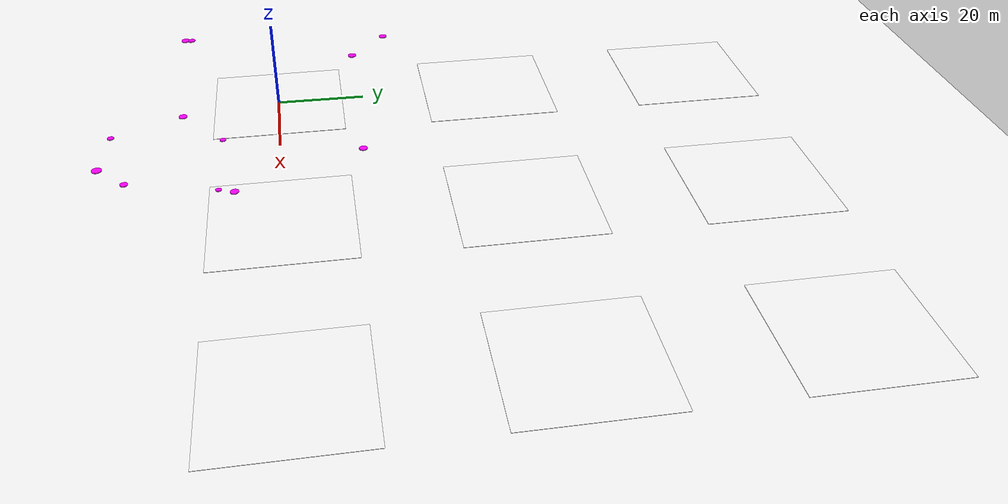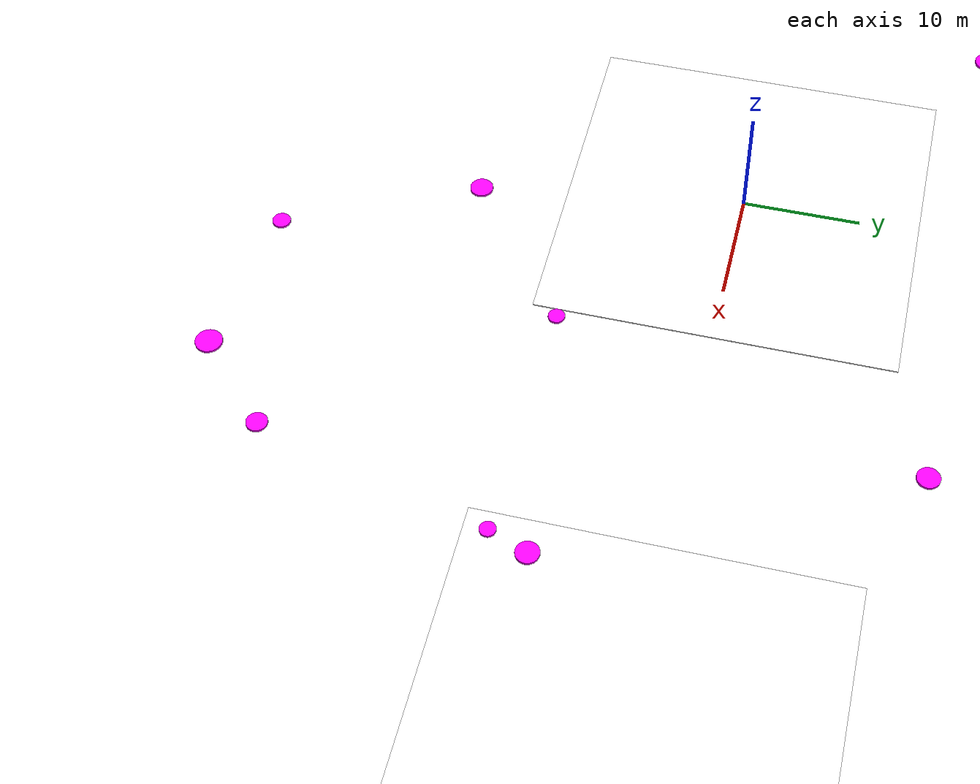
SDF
<sdf version="1.9">
 <world name="multi_field_farm_world">
  <physics name="1ms" type="ignore">
   <max_step_size>0.001</max_step_size>
   <real_time_factor>1.0</real_time_factor>
  </physics>
  <plugin filename="gz-sim-physics-system" name="gz::sim::systems::Physics"/>
  <plugin filename="gz-sim-sensors-system" name="gz::sim::systems::Sensors">
   <render_engine>ogre2</render_engine>
  </plugin>
  <plugin filename="gz-sim-user-commands-system" name="gz::sim::systems::UserCommands"/>
  <plugin filename="gz-sim-scene-broadcaster-system" name="gz::sim::systems::SceneBroadcaster"/>
  <plugin filename="gz-sim-imu-system" name="gz::sim::systems::Imu"/>
  <plugin filename="gz-sim-navsat-system" name="gz::sim::systems::NavSat"/>
  <plugin filename="gz-sim-particle-emitter-system" name="gz::sim::systems::ParticleEmitter"/>
  <scene><ambient>0.85 0.85 0.85</ambient><background>0.7 0.9 1.0</background></scene>
  <spherical_coordinates>
   <latitude_deg>-35.363262</latitude_deg>
   <longitude_deg>149.165237</longitude_deg>
   <elevation>584</elevation>
   <heading_deg>0</heading_deg>
   <surface_model>EARTH_WGS84</surface_model>
  </spherical_coordinates>
  <light type="directional" name="sun">
   <intensity>1.6</intensity>
   <pose>0 0 10 0 0 0</pose>
   <diffuse>1.0 1.0 0.95 1</diffuse>
   <specular>0.8 0.8 0.8 1</specular>
   <attenuation>
    <range>1000</range>
    <constant>0.9</constant>
    <linear>0.01</linear>
    <quadratic>0.001</quadratic>
   </attenuation>
   <direction>-0.3 0.2 -0.9</direction>
  </light>
  <model name="ground_plane">
   <static>true</static>
   <link name="link">
    <collision name="collision">
     <geometry><plane><normal>0 0 1</normal><size>2000 2000</size></plane></geometry>
     <surface><friction><ode><mu>100</mu><mu2>50</mu2></ode></friction></surface>
    </collision>
    <visual name="visual">
     <geometry><plane><normal>0 0 1</normal><size>2000 2000</size></plane></geometry>
     <material>
      <ambient>1 1 1 1</ambient>
      <diffuse>1 1 1 1</diffuse>
      <specular>0.05 0.05 0.05 1</specular>
      <pbr>
       <metal><albedo_map>model://farm_textures/textures/grass.png</albedo_map><roughness>1.0</roughness></metal>
      </pbr>
     </material>
    </visual>
   </link>
  </model>
  <model name="field_1">
   <static>true</static>
   <pose>0 0 0.05 0 0 0</pose>
   <link name="link">
    <collision name="collision"><geometry><box><size>30 30 0.1</size></box></geometry></collision>
    <visual name="visual">
     <geometry><box><size>30 30 0.1</size></box></geometry>
     <material>
      <ambient>1 1 1 1</ambient>
      <diffuse>1 1 1 1</diffuse>
      <specular>0.05 0.05 0.05 1</specular>
      <pbr>
       <metal><albedo_map>model://farm_textures/textures/corn.png</albedo_map><roughness>1.0</roughness></metal>
      </pbr>
     </material>
    </visual>
   </link>
  </model>
  <model name="field_2">
   <static>true</static>
   <pose>50 0 0.05 0 0 0</pose>
   <link name="link">
    <collision name="collision"><geometry><box><size>30 30 0.1</size></box></geometry></collision>
    <visual name="visual">
     <geometry><box><size>30 30 0.1</size></box></geometry>
     <material>
      <ambient>1 1 1 1</ambient>
      <diffuse>1 1 1 1</diffuse>
      <specular>0.05 0.05 0.05 1</specular>
      <pbr>
       <metal><albedo_map>model://farm_textures/textures/soybean.png</albedo_map><roughness>1.0</roughness></metal>
      </pbr>
     </material>
    </visual>
   </link>
  </model>
  <model name="field_3">
   <static>true</static>
   <pose>100 0 0.05 0 0 0</pose>
   <link name="link">
    <collision name="collision"><geometry><box><size>30 30 0.1</size></box></geometry></collision>
    <visual name="visual">
     <geometry><box><size>30 30 0.1</size></box></geometry>
     <material>
      <ambient>1 1 1 1</ambient>
      <diffuse>1 1 1 1</diffuse>
      <specular>0.05 0.05 0.05 1</specular>
      <pbr>
       <metal><albedo_map>model://farm_textures/textures/wheat.png</albedo_map><roughness>1.0</roughness></metal>
      </pbr>
     </material>
    </visual>
   </link>
  </model>
  <model name="field_4">
   <static>true</static>
   <pose>0 50 0.05 0 0 0</pose>
   <link name="link">
    <collision name="collision"><geometry><box><size>30 30 0.1</size></box></geometry></collision>
    <visual name="visual">
     <geometry><box><size>30 30 0.1</size></box></geometry>
     <material>
      <ambient>1 1 1 1</ambient>
      <diffuse>1 1 1 1</diffuse>
      <specular>0.05 0.05 0.05 1</specular>
      <pbr>
       <metal><albedo_map>model://farm_textures/textures/rice.png</albedo_map><roughness>1.0</roughness></metal>
      </pbr>
     </material>
    </visual>
   </link>
  </model>
  <model name="field_5">
   <static>true</static>
   <pose>50 50 0.05 0 0 0</pose>
   <link name="link">
    <collision name="collision"><geometry><box><size>30 30 0.1</size></box></geometry></collision>
    <visual name="visual">
     <geometry><box><size>30 30 0.1</size></box></geometry>
     <material>
      <ambient>1 1 1 1</ambient>
      <diffuse>1 1 1 1</diffuse>
      <specular>0.05 0.05 0.05 1</specular>
      <pbr>
       <metal><albedo_map>model://farm_textures/textures/canola.png</albedo_map><roughness>1.0</roughness></metal>
      </pbr>
     </material>
    </visual>
   </link>
  </model>
  <model name="field_6">
   <static>true</static>
   <pose>100 50 0.05 0 0 0</pose>
   <link name="link">
    <collision name="collision"><geometry><box><size>30 30 0.1</size></box></geometry></collision>
    <visual name="visual">
     <geometry><box><size>30 30 0.1</size></box></geometry>
     <material>
      <ambient>1 1 1 1</ambient>
      <diffuse>1 1 1 1</diffuse>
      <specular>0.05 0.05 0.05 1</specular>
      <pbr>
       <metal><albedo_map>model://farm_textures/textures/barley.png</albedo_map><roughness>1.0</roughness></metal>
      </pbr>
     </material>
    </visual>
   </link>
  </model>
  <model name="field_7">
   <static>true</static>
   <pose>0 100 0.05 0 0 0</pose>
   <link name="link">
    <collision name="collision"><geometry><box><size>30 30 0.1</size></box></geometry></collision>
    <visual name="visual">
     <geometry><box><size>30 30 0.1</size></box></geometry>
     <material>
      <ambient>1 1 1 1</ambient>
      <diffuse>1 1 1 1</diffuse>
      <specular>0.05 0.05 0.05 1</specular>
      <pbr>
       <metal><albedo_map>model://farm_textures/textures/cotton.png</albedo_map><roughness>1.0</roughness></metal>
      </pbr>
     </material>
    </visual>
   </link>
  </model>
  <model name="field_8">
   <static>true</static>
   <pose>50 100 0.05 0 0 0</pose>
   <link name="link">
    <collision name="collision"><geometry><box><size>30 30 0.1</size></box></geometry></collision>
    <visual name="visual">
     <geometry><box><size>30 30 0.1</size></box></geometry>
     <material>
      <ambient>1 1 1 1</ambient>
      <diffuse>1 1 1 1</diffuse>
      <specular>0.05 0.05 0.05 1</specular>
      <pbr>
       <metal><albedo_map>model://farm_textures/textures/sunflower.png</albedo_map><roughness>1.0</roughness></metal>
      </pbr>
     </material>
    </visual>
   </link>
  </model>
  <model name="field_9">
   <static>true</static>
   <pose>100 100 0.05 0 0 0</pose>
   <link name="link">
    <collision name="collision"><geometry><box><size>30 30 0.1</size></box></geometry></collision>
    <visual name="visual">
     <geometry><box><size>30 30 0.1</size></box></geometry>
     <material>
      <ambient>1 1 1 1</ambient>
      <diffuse>1 1 1 1</diffuse>
      <specular>0.05 0.05 0.05 1</specular>
      <pbr>
       <metal><albedo_map>model://farm_textures/textures/alfalfa.png</albedo_map><roughness>1.0</roughness></metal>
      </pbr>
     </material>
    </visual>
   </link>
  </model>
  <include><uri>model://weed_field</uri><name>weed_field</name><pose>-45 -50 0 0 0 0</pose></include>
 </world>
</sdf>

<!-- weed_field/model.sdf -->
<sdf version="1.9">
  <model name="weed_field">
    <static>true</static>
    <link name="weed_0">
      <pose>56.154 12.001 0.2 0 0 0</pose>
      <visual name="visual">
        <geometry>
          <cylinder>
            <radius>0.779</radius>
            <length>0.2</length>
          </cylinder>
        </geometry>
        <material>
          <ambient>1 0 1 1</ambient>
          <diffuse>1 0 1 1</diffuse>
          <emissive>1 0 1 1</emissive>
        </material>
      </visual>
    </link>
    <link name="weed_1">
      <pose>22.857 68.918 0.2 0 0 0</pose>
      <visual name="visual">
        <geometry>
          <cylinder>
            <radius>1.04</radius>
            <length>0.2</length>
          </cylinder>
        </geometry>
        <material>
          <ambient>1 0 1 1</ambient>
          <diffuse>1 0 1 1</diffuse>
          <emissive>1 0 1 1</emissive>
        </material>
      </visual>
    </link>
    <link name="weed_2">
      <pose>76.374 16.955 0.2 0 0 0</pose>
      <visual name="visual">
        <geometry>
          <cylinder>
            <radius>0.874</radius>
            <length>0.2</length>
          </cylinder>
        </geometry>
        <material>
          <ambient>1 0 1 1</ambient>
          <diffuse>1 0 1 1</diffuse>
          <emissive>1 0 1 1</emissive>
        </material>
      </visual>
    </link>
    <link name="weed_3">
      <pose>7.384 27.491 0.2 0 0 0</pose>
      <visual name="visual">
        <geometry>
          <cylinder>
            <radius>0.9285</radius>
            <length>0.2</length>
          </cylinder>
        </geometry>
        <material>
          <ambient>1 0 1 1</ambient>
          <diffuse>1 0 1 1</diffuse>
          <emissive>1 0 1 1</emissive>
        </material>
      </visual>
    </link>
    <link name="weed_4">
      <pose>7.123 25.907 0.2 0 0 0</pose>
      <visual name="visual">
        <geometry>
          <cylinder>
            <radius>1.0225</radius>
            <length>0.2</length>
          </cylinder>
        </geometry>
        <material>
          <ambient>1 0 1 1</ambient>
          <diffuse>1 0 1 1</diffuse>
          <emissive>1 0 1 1</emissive>
        </material>
      </visual>
    </link>
    <link name="weed_5">
      <pose>48.595 27.635 0.2 0 0 0</pose>
      <visual name="visual">
        <geometry>
          <cylinder>
            <radius>0.983</radius>
            <length>0.2</length>
          </cylinder>
        </geometry>
        <material>
          <ambient>1 0 1 1</ambient>
          <diffuse>1 0 1 1</diffuse>
          <emissive>1 0 1 1</emissive>
        </material>
      </visual>
    </link>
    <link name="weed_6">
      <pose>69.754 10.52 0.2 0 0 0</pose>
      <visual name="visual">
        <geometry>
          <cylinder>
            <radius>1.124</radius>
            <length>0.2</length>
          </cylinder>
        </geometry>
        <material>
          <ambient>1 0 1 1</ambient>
          <diffuse>1 0 1 1</diffuse>
          <emissive>1 0 1 1</emissive>
        </material>
      </visual>
    </link>
    <link name="weed_7">
      <pose>60.851 37.22 0.2 0 0 0</pose>
      <visual name="visual">
        <geometry>
          <cylinder>
            <radius>0.701</radius>
            <length>0.2</length>
          </cylinder>
        </geometry>
        <material>
          <ambient>1 0 1 1</ambient>
          <diffuse>1 0 1 1</diffuse>
          <emissive>1 0 1 1</emissive>
        </material>
      </visual>
    </link>
    <link name="weed_8">
      <pose>81.577 36.928 0.2 0 0 0</pose>
      <visual name="visual">
        <geometry>
          <cylinder>
            <radius>0.6605</radius>
            <length>0.2</length>
          </cylinder>
        </geometry>
        <material>
          <ambient>1 0 1 1</ambient>
          <diffuse>1 0 1 1</diffuse>
          <emissive>1 0 1 1</emissive>
        </material>
      </visual>
    </link>
    <link name="weed_9">
      <pose>12.737 77.8 0.2 0 0 0</pose>
      <visual name="visual">
        <geometry>
          <cylinder>
            <radius>0.9925</radius>
            <length>0.2</length>
          </cylinder>
        </geometry>
        <material>
          <ambient>1 0 1 1</ambient>
          <diffuse>1 0 1 1</diffuse>
          <emissive>1 0 1 1</emissive>
        </material>
      </visual>
    </link>
    <link name="weed_10">
      <pose>69.57 68.379 0.2 0 0 0</pose>
      <visual name="visual">
        <geometry>
          <cylinder>
            <radius>0.9485</radius>
            <length>0.2</length>
          </cylinder>
        </geometry>
        <material>
          <ambient>1 0 1 1</ambient>
          <diffuse>1 0 1 1</diffuse>
          <emissive>1 0 1 1</emissive>
        </material>
      </visual>
    </link>
    <link name="weed_11">
      <pose>82.849 40.283 0.2 0 0 0</pose>
      <visual name="visual">
        <geometry>
          <cylinder>
            <radius>0.959</radius>
            <length>0.2</length>
          </cylinder>
        </geometry>
        <material>
          <ambient>1 0 1 1</ambient>
          <diffuse>1 0 1 1</diffuse>
          <emissive>1 0 1 1</emissive>
        </material>
      </visual>
    </link>
  </model>
</sdf>
